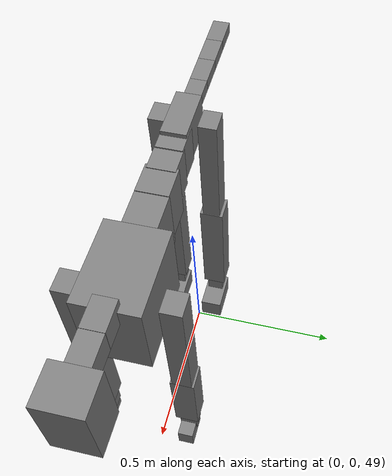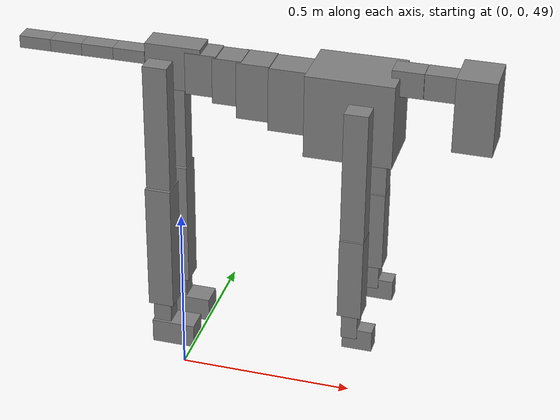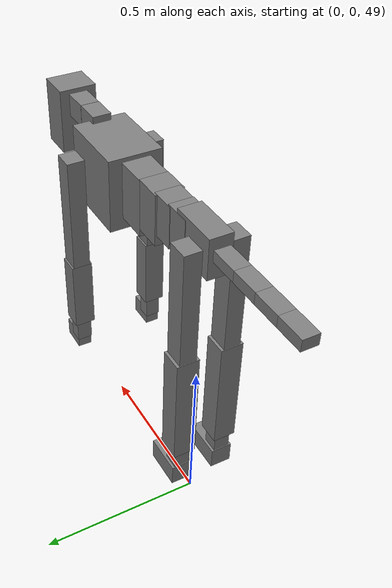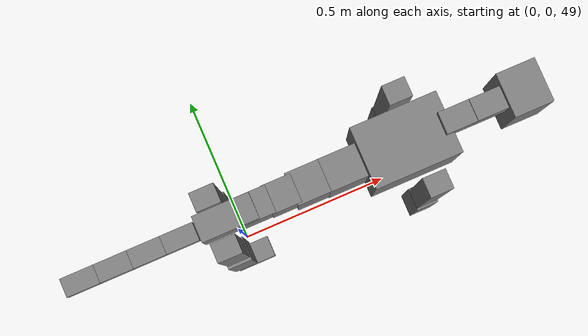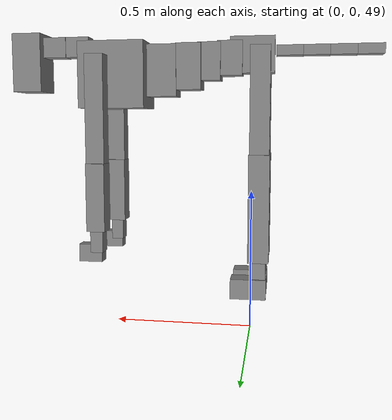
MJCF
<mujoco model="dog">

    <default>
        <joint armature="0.02" stiffness="1" damping="0.2" limited="true"/>
        <geom condim="3" friction="1 0.05 0.05" margin="0.01"/>
        <motor ctrllimited="true" ctrlrange="-1.0 1.0" forcelimited="true" gear="50"/>
    </default>

    <compiler inertiafromgeom="true" angle="radian"/>

    <option timestep="0.016" iterations="50" tolerance="1e-10" solver="Newton" jacobian="dense" cone="pyramidal"/>

    <size nconmax="20000" njmax="60000" nstack="5000000"/>
    <visual>
        <map force="0.1" zfar="30"/>
        <rgba haze="0.15 0.25 0.35 1"/>
        <quality shadowsize="2048"/>
        <global offwidth="800" offheight="800"/>
    </visual>

    <asset>
        <texture type="skybox" builtin="gradient" rgb1="0.3 0.5 0.7" rgb2="0 0 0" width="512" height="512"/>
        <texture name="texplane" type="2d" builtin="checker" rgb1=".2 .3 .4" rgb2=".1 0.15 0.2" width="512" height="512"
                 mark="cross" markrgb=".8 .8 .8"/>
        <texture name="texgeom" type="cube" builtin="flat" mark="cross" width="127" height="1278" rgb1="0.8 0.6 0.4"
                 rgb2="0.8 0.6 0.4" markrgb="1 1 1" random="0.01"/>

        <material name="matplane" reflectance="0.3" texture="texplane" texrepeat="1 1" texuniform="true"/>
        <material name="matgeom" texture="texgeom" texuniform="true" rgba="0.8 0.6 .4 1"/>
    </asset>

    <worldbody>
        <geom name="floor" pos="0 0 0" size="0 0 .25" type="plane" material="matplane" condim="3"/>

        <light directional="false" diffuse=".2 .2 .2" specular="0 0 0" pos="0 0 5" dir="0 0 -1" castshadow="false"/>
        <light mode="targetbodycom" target="torso" directional="false" diffuse=".8 .8 .8" specular="0.3 0.3 0.3"
               pos="0 0 4.0" dir="0 0 -1"/>

        <body name="root" pos="0 0 50">
            <freejoint name="root_1"/>
            <geom type="box" pos="0 0 -0.02" size="0.0774  0.0358  0.063" density="2030"/>

            <body name="spine1" pos="0.054 0 0">
                <joint name="spine1_y" axis="0 1 0" range="0 0.7" limited="true"/>
                <geom type="box" pos="0.02375 0 -0.03" size="0.04375  0.0375  0.05985" density="2030"/>

                <body name="spine2" pos="0.0612 0 0">
                    <joint name="spine2_y" axis="0 1 0" range="-0.15 0.15" limited="true"/>
                    <geom type="box" pos="0.03555  0  -0.04" size="0.04055  0.039  0.06615" density="2030"/>

                    <body name="spine3" pos="0.0730 0 0">
                        <joint name="spine3_y" axis="0 1 0" range="-0.15 0.15" limited="true"/>
                        <geom type="box" pos="0.03555  0  -0.057" size="0.04555  0.0445  0.081" density="2030"/>

                        <body name="spine4" pos="0.0780 0 0">
                            <joint name="spine4_y" axis="0 1 0" range="-0.15 0.15" limited="true"/>
                            <geom type="box" pos="0.05265  0  -0.07" size="0.05265  0.045  0.09135" density="2030"/>

                            <body name="torso" pos="0.1082 0 0">
                                <joint name="torso_y" axis="0 1 0" range="-0.15 0.15" limited="true"/>
                                <geom type="box" pos="0.11925  0  -0.085" size="0.11925  0.085  0.11745"
                                      density="2030"/>

                                <body name="neck1" pos="0.2160  0   0.0180">
                                    <joint name="neck1_y" axis="0 1 0" range="-1.2  -1" limited="true"/>
                                    <geom type="box" pos="0.0423  0  0" size="0.0423  0.03  0.036" density="2325"/>

                                    <body name="neck2" pos="0.0853  0  0">
                                        <joint name="neck2_y" axis="0 1 0" range="0.1  0" limited="true"/>
                                        <geom type="box" pos="0.0423  0  0" size="0.0423  0.03  0.036" density="2325"/>

                                        <body name="head" pos="0.0853  0  0">
                                            <joint name="head_y" axis="0 1 0" range="-0.3  -0.2" limited="true"/>
                                            <geom type="box" pos="0.0531  0  -0.055" size="0.0531  0.06  0.1044"
                                                  density="4030"/>

                                        </body>
                                    </body>
                                </body>

                                <body name="front_shoulder" pos="0.156  0   -0.0480">
                                    <joint name="front_shoulder_y" axis="0 1 0" range="-1 1.5" limited="true"/>
                                    <geom type="box" pos="0 0.13 -0.1735" size="0.0324  0.0277  0.2001" density="1158"/>
                                    <geom type="box" pos="0 -0.13 -0.1735" size="0.0324  0.0277  0.2001"
                                          density="1158"/>

                                    <body name="front_elbow" pos="0  0  -0.3470">
                                        <joint name="front_elbow_y" axis="0 1 0" range="-2 0" limited="true"/>
                                        <geom type="box" pos="0 0.13 -0.1188" size="0.0326  0.0334  0.1188"
                                              density="1081"/>
                                        <geom type="box" pos="0 -0.13 -0.1188" size="0.0326  0.0334  0.1188"
                                              density="1081"/>

                                        <body name="front_wrist" pos="0  0  -0.2377">
                                            <joint name="front_wrist_y" axis="0 1 0" range="-0.2 0" limited="true"/>
                                            <geom type="box" pos="0 0.13 -0.0307" size="0.0221  0.0245  0.0439"
                                                  density="1664"/>
                                            <geom type="box" pos="0 -0.13 -0.0307" size="0.0221  0.0245  0.0439"
                                                  density="1664"/>

                                            <body name="front_finger_end" pos="0  0  -0.0614">
                                                <joint name="front_finger_y" axis="0 1 0" range="-0.4 1"
                                                       limited="true"/>
                                                <geom type="box" pos="0.0225  0.13  -0.0158"
                                                      size="0.0412  0.0225  0.0308" density="1515"/>
                                                <geom type="box" pos="0.0225  -0.13  -0.0158"
                                                      size="0.0412  0.0225  0.0308" density="1515"/>

                                            </body>

                                        </body>
                                    </body>
                                </body>

                            </body>
                        </body>
                    </body>
                </body>
            </body>

            <body name="back_hip" pos="-0.03 0 -0.018">
                <joint name="back_hip_y" axis="0 1 0" range="-1.5 0.3" limited="true"/>
                <geom type="box" pos="0 0.07 -0.1808" size="0.0340  0.0266  0.2036" density="1154"/>
                <geom type="box" pos="0 -0.07 -0.1808" size="0.0340  0.0266  0.2036" density="1154"/>

                <body name="back_knee" pos="0  0  -0.3615">
                    <joint name="back_knee_y" axis="0 1 0" range="0 2.8" limited="true"/>
                    <geom type="box" pos="0 0.07 -0.1715" size="0.0361  0.0356  0.1870" density="1227"/>
                    <geom type="box" pos="0 -0.07 -0.1715" size="0.0361  0.0356  0.1870" density="1227"/>

                    <body name="back_ankle" pos="0  0  -0.3429">
                        <joint name="back_ankle_y" axis="0 1 0" range="-2.2 0" limited="true"/>
                        <geom type="box" pos="0 0.07 -0.0451" size="0.0255  0.0255  0.0564" density="1284"/>
                        <geom type="box" pos="0 -0.07 -0.0451" size="0.0255  0.0255  0.0564" density="1284"/>

                        <body name="back_toe_end" pos="0  0  -0.0902">
                            <joint name="back_toe_y" axis="0 1 0" range="-0.4 1" limited="true"/>
                            <geom type="box" pos="0.0338  0.07  -0.0202" size="0.0619  0.0338  0.0352" density="1515"/>
                            <geom type="box" pos="0.0338  -0.07  -0.0202" size="0.0619  0.0338  0.0352" density="1515"/>

                        </body>
                    </body>
                </body>
            </body>

            <body name="tail1" pos="-0.074 0 -0.006">
                <joint name="tail1_y" axis="0 1 0" range="-0.2 0.2" limited="true"/>
                <geom type="box" pos="-0.0536  0  0" size="0.045  0.025  0.0175" density="1587"/>

                <body name="tail2" pos="-0.09 0 0">
                    <joint name="tail2_y" axis="0 1 0" range="-0.2 0.2" limited="true"/>
                    <geom type="box" pos="-0.0536  0  0" size="0.045  0.025  0.0175" density="1587"/>

                    <body name="tail3" pos="-0.09 0 0">
                        <joint name="tail3_y" axis="0 1 0" range="-0.2 0.2" limited="true"/>
                        <geom type="box" pos="-0.0536  0  0" size="0.045  0.025  0.0175" density="1587"/>

                        <body name="tail4" pos="-0.09 0 0">
                            <joint name="tail4_y" axis="0 1 0" range="-0.2 0.2" limited="true"/>
                            <geom type="box" pos="-0.0536  0  0" size="0.045  0.025  0.0175" density="1587"/>

                        </body>
                    </body>
                </body>
            </body>
        </body>
    </worldbody>

    <actuator>
        <motor joint="spine1_y" forcerange="-150 150     "/>
        <motor joint="spine2_y" forcerange="-150 150     "/>
        <motor joint="spine3_y" forcerange="-150 150     "/>
        <motor joint="spine4_y" forcerange="-150 150     "/>
        <motor joint="torso_y" forcerange="-150 150     "/>
        <motor joint="neck1_y" forcerange="-100 100       "/>
        <motor joint="neck2_y" forcerange="-100 100       "/>
        <motor joint="head_y" forcerange="-150 150       "/>
        <motor joint="front_shoulder_y" forcerange="-139.79 144.71"/>
        <motor joint="front_elbow_y" forcerange="-193.90 148.79"/>
        <motor joint="front_wrist_y" forcerange="-90.96 105.12"/>
        <motor joint="front_finger_y" forcerange="-41.60 38.32"/>
        <motor joint="back_hip_y" forcerange="-303.50 251.71"/>
        <motor joint="back_knee_y" forcerange="-338.04 379.55"/>
        <motor joint="back_angle_y" forcerange="-196.69 111.69"/>
        <motor joint="back_toe_y" forcerange="-53.88 136.34"/>
        <motor joint="tail1_y" forcerange="-50 50     "/>
        <motor joint="tail2_y" forcerange="-50 50     "/>
        <motor joint="tail3_y" forcerange="-50 50     "/>
        <motor joint="tail4_y" forcerange="-50 50     "/>
    </actuator>
</mujoco>
